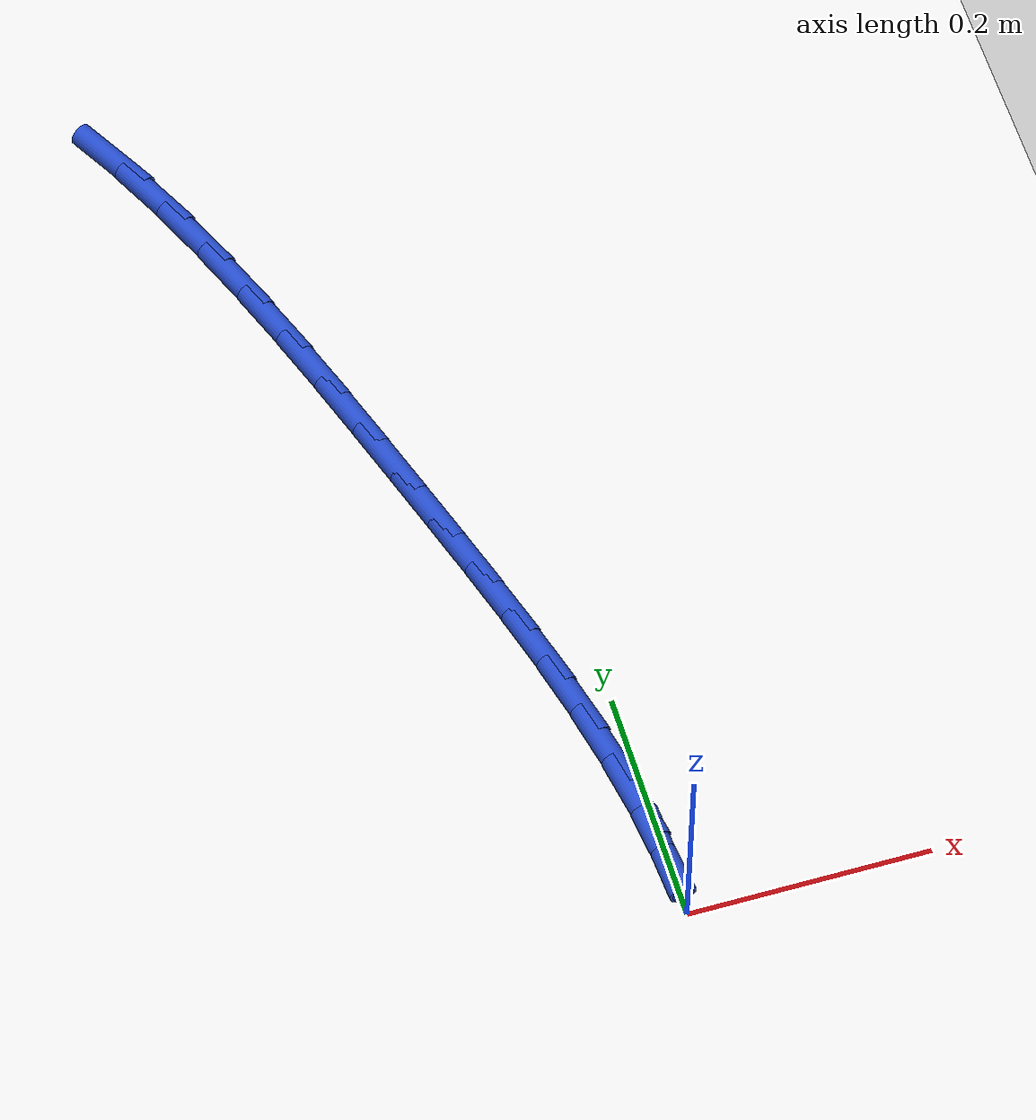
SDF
<sdf version="1.6">
 <world name="default">
  <model name="ground_plane">
   <static>1</static>
   <link name="link">
    <collision name="collision">
     <geometry><plane><normal>0 0 1</normal><size>100 100</size></plane></geometry>
     <surface><friction><ode><mu>100</mu><mu2>50</mu2></ode></friction></surface>
    </collision>
    <visual name="visual">
     <cast_shadows>0</cast_shadows>
     <geometry><plane><normal>0 0 1</normal><size>100 100</size></plane></geometry>
     <material>
      <script><uri>file://media/materials/scripts/gazebo.material</uri><name>Gazebo/WhiteGlow</name></script>
     </material>
    </visual>
   </link>
  </model>
  <model name="line">
   <link name="link_1">
    <pose>-0.003332086898377233 0.05210531819002622 0.01 0 1.57 -1.4468177561323297</pose>
    <collision name="collision">
     <geometry><cylinder><radius>0.01</radius><length>0.08</length></cylinder></geometry>
    </collision>
    <visual name="visual">
     <material>
      <script><name>Gazebo/Blue</name><uri>file://media/materials/scripts/gazebo.material</uri></script>
     </material>
     <geometry><cylinder><radius>0.01</radius><length>0.08</length></cylinder></geometry>
    </visual>
   </link>
   <link name="link_2">
    <pose>-0.009760234622071573 0.1036882560941185 0.01 0 1.57 -1.3943022531268132</pose>
    <collision name="collision">
     <geometry><cylinder><radius>0.01</radius><length>0.08</length></cylinder></geometry>
    </collision>
    <visual name="visual">
     <material>
      <script><name>Gazebo/Blue</name><uri>file://media/materials/scripts/gazebo.material</uri></script>
     </material>
     <geometry><cylinder><radius>0.01</radius><length>0.08</length></cylinder></geometry>
    </visual>
   </link>
   <link name="link_3">
    <pose>-0.018895232684314135 0.15490781321370867 0.01 0 1.57 -1.349962863658408</pose>
    <collision name="collision">
     <geometry><cylinder><radius>0.01</radius><length>0.08</length></cylinder></geometry>
    </collision>
    <visual name="visual">
     <material>
      <script><name>Gazebo/Blue</name><uri>file://media/materials/scripts/gazebo.material</uri></script>
     </material>
     <geometry><cylinder><radius>0.01</radius><length>0.08</length></cylinder></geometry>
    </visual>
   </link>
   <link name="link_4">
    <pose>-0.030347870598336022 0.20592298905022852 0.01 0 1.57 -1.3140605316810459</pose>
    <collision name="collision">
     <geometry><cylinder><radius>0.01</radius><length>0.08</length></cylinder></geometry>
    </collision>
    <visual name="visual">
     <material>
      <script><name>Gazebo/Blue</name><uri>file://media/materials/scripts/gazebo.material</uri></script>
     </material>
     <geometry><cylinder><radius>0.01</radius><length>0.08</length></cylinder></geometry>
    </visual>
   </link>
   <link name="link_5">
    <pose>-0.04372893787736838 0.25689278310511005 0.01 0 1.57 -1.286624159305949</pose>
    <collision name="collision">
     <geometry><cylinder><radius>0.01</radius><length>0.08</length></cylinder></geometry>
    </collision>
    <visual name="visual">
     <material>
      <script><name>Gazebo/Blue</name><uri>file://media/materials/scripts/gazebo.material</uri></script>
     </material>
     <geometry><cylinder><radius>0.01</radius><length>0.08</length></cylinder></geometry>
    </visual>
   </link>
   <link name="link_6">
    <pose>-0.05864922403464233 0.30797619487978506 0.01 0 1.57 -1.2675294745256374</pose>
    <collision name="collision">
     <geometry><cylinder><radius>0.01</radius><length>0.08</length></cylinder></geometry>
    </collision>
    <visual name="visual">
     <material>
      <script><name>Gazebo/Blue</name><uri>file://media/materials/scripts/gazebo.material</uri></script>
     </material>
     <geometry><cylinder><radius>0.01</radius><length>0.08</length></cylinder></geometry>
    </visual>
   </link>
   <link name="link_7">
    <pose>-0.07471951858338899 0.35933222387568525 0.01 0 1.57 -1.2565625485777268</pose>
    <collision name="collision">
     <geometry><cylinder><radius>0.01</radius><length>0.08</length></cylinder></geometry>
    </collision>
    <visual name="visual">
     <material>
      <script><name>Gazebo/Blue</name><uri>file://media/materials/scripts/gazebo.material</uri></script>
     </material>
     <geometry><cylinder><radius>0.01</radius><length>0.08</length></cylinder></geometry>
    </visual>
   </link>
   <link name="link_8">
    <pose>-0.09155061103683948 0.4111198695942427 0.01 0 1.57 -1.2530583037774674</pose>
    <collision name="collision">
     <geometry><cylinder><radius>0.01</radius><length>0.08</length></cylinder></geometry>
    </collision>
    <visual name="visual">
     <material>
      <script><name>Gazebo/Blue</name><uri>file://media/materials/scripts/gazebo.material</uri></script>
     </material>
     <geometry><cylinder><radius>0.01</radius><length>0.08</length></cylinder></geometry>
    </visual>
   </link>
   <link name="link_9">
    <pose>-0.10877168341561973 0.4634825108003762 0.01 0 1.57 -1.249801002444167</pose>
    <collision name="collision">
     <geometry><cylinder><radius>0.01</radius><length>0.08</length></cylinder></geometry>
    </collision>
    <visual name="visual">
     <material>
      <script><name>Gazebo/Blue</name><uri>file://media/materials/scripts/gazebo.material</uri></script>
     </material>
     <geometry><cylinder><radius>0.01</radius><length>0.08</length></cylinder></geometry>
    </visual>
   </link>
   <link name="link_10">
    <pose>-0.12633078093284686 0.5162927160966634 0.01 0 1.57 -1.2408788483759607</pose>
    <collision name="collision">
     <geometry><cylinder><radius>0.01</radius><length>0.08</length></cylinder></geometry>
    </collision>
    <visual name="visual">
     <material>
      <script><name>Gazebo/Blue</name><uri>file://media/materials/scripts/gazebo.material</uri></script>
     </material>
     <geometry><cylinder><radius>0.01</radius><length>0.08</length></cylinder></geometry>
    </visual>
   </link>
   <link name="link_11">
    <pose>-0.14444584962720103 0.5691938276082817 0.01 0 1.57 -1.2260589297186144</pose>
    <collision name="collision">
     <geometry><cylinder><radius>0.01</radius><length>0.08</length></cylinder></geometry>
    </collision>
    <visual name="visual">
     <material>
      <script><name>Gazebo/Blue</name><uri>file://media/materials/scripts/gazebo.material</uri></script>
     </material>
     <geometry><cylinder><radius>0.01</radius><length>0.08</length></cylinder></geometry>
    </visual>
   </link>
   <link name="link_12">
    <pose>-0.16334335018043533 0.6218219559833138 0.01 0 1.57 -1.2051354419609097</pose>
    <collision name="collision">
     <geometry><cylinder><radius>0.01</radius><length>0.08</length></cylinder></geometry>
    </collision>
    <visual name="visual">
     <material>
      <script><name>Gazebo/Blue</name><uri>file://media/materials/scripts/gazebo.material</uri></script>
     </material>
     <geometry><cylinder><radius>0.01</radius><length>0.08</length></cylinder></geometry>
    </visual>
   </link>
   <link name="link_13">
    <pose>-0.18324974327430313 0.6738132118698424 0.01 0 1.57 -1.177749246224905</pose>
    <collision name="collision">
     <geometry><cylinder><radius>0.01</radius><length>0.08</length></cylinder></geometry>
    </collision>
    <visual name="visual">
     <material>
      <script><name>Gazebo/Blue</name><uri>file://media/materials/scripts/gazebo.material</uri></script>
     </material>
     <geometry><cylinder><radius>0.01</radius><length>0.08</length></cylinder></geometry>
    </visual>
   </link>
   <link name="link_14">
    <pose>-0.20439148959055756 0.7248037059159507 0.01 0 1.57 -1.1433948976387411</pose>
    <collision name="collision">
     <geometry><cylinder><radius>0.01</radius><length>0.08</length></cylinder></geometry>
    </collision>
    <visual name="visual">
     <material>
      <script><name>Gazebo/Blue</name><uri>file://media/materials/scripts/gazebo.material</uri></script>
     </material>
     <geometry><cylinder><radius>0.01</radius><length>0.08</length></cylinder></geometry>
    </visual>
   </link>
   <link name="link_15">
    <pose>-0.2269950498109519 0.7744295487697211 0.01 0 1.57 -1.1014331696242747</pose>
    <collision name="collision">
     <geometry><cylinder><radius>0.01</radius><length>0.08</length></cylinder></geometry>
    </collision>
    <visual name="visual">
     <material>
      <script><name>Gazebo/Blue</name><uri>file://media/materials/scripts/gazebo.material</uri></script>
     </material>
     <geometry><cylinder><radius>0.01</radius><length>0.08</length></cylinder></geometry>
    </visual>
   </link>
   <link name="link_16">
    <pose>-0.2512868846172393 0.8223268510792368 0.01 0 1.57 -1.0511178460823414</pose>
    <collision name="collision">
     <geometry><cylinder><radius>0.01</radius><length>0.08</length></cylinder></geometry>
    </collision>
    <visual name="visual">
     <material>
      <script><name>Gazebo/Blue</name><uri>file://media/materials/scripts/gazebo.material</uri></script>
     </material>
     <geometry><cylinder><radius>0.01</radius><length>0.08</length></cylinder></geometry>
    </visual>
   </link>
   <link name="link_141">
    <pose>-0.003415333814854725 0.052024549340346476 0.01 0 1.57 -1.5052418890932027</pose>
    <collision name="collision">
     <geometry><cylinder><radius>0.01</radius><length>0.08</length></cylinder></geometry>
    </collision>
    <visual name="visual">
     <material>
      <script><name>Gazebo/Blue</name><uri>file://media/materials/scripts/gazebo.material</uri></script>
     </material>
     <geometry><cylinder><radius>0.01</radius><length>0.08</length></cylinder></geometry>
    </visual>
   </link>
  </model>
 </world>
</sdf>
